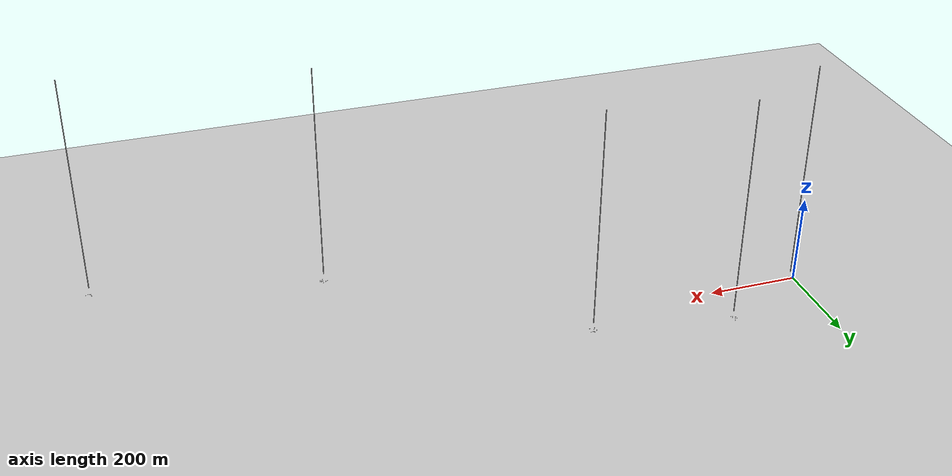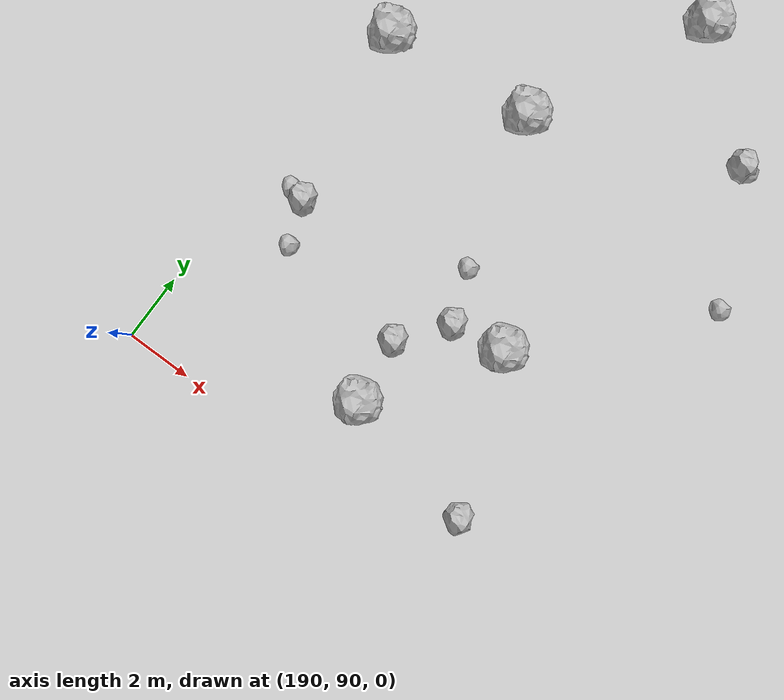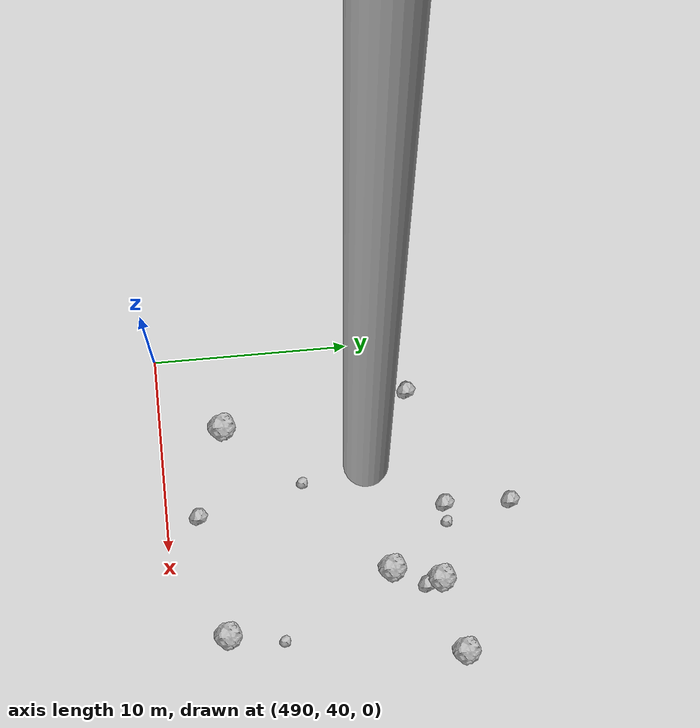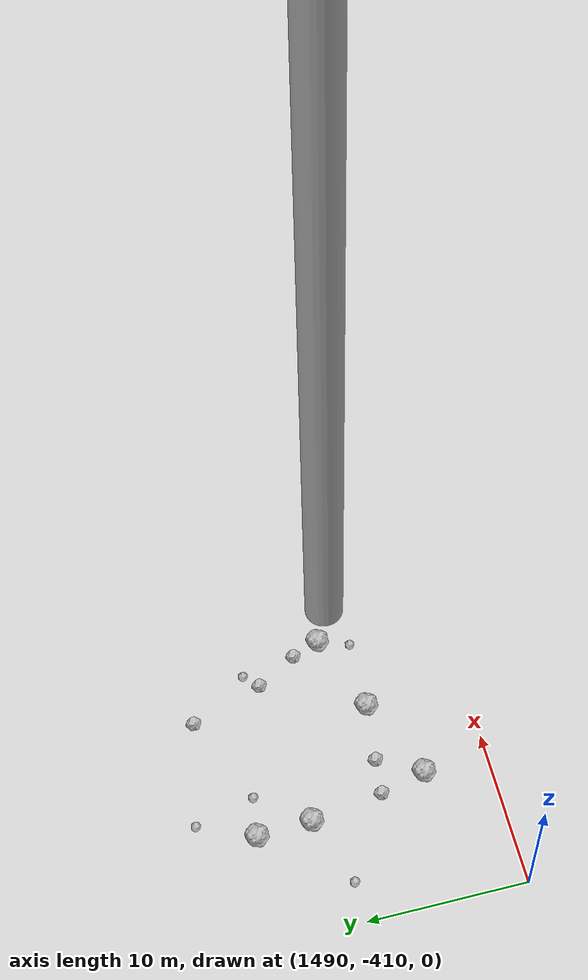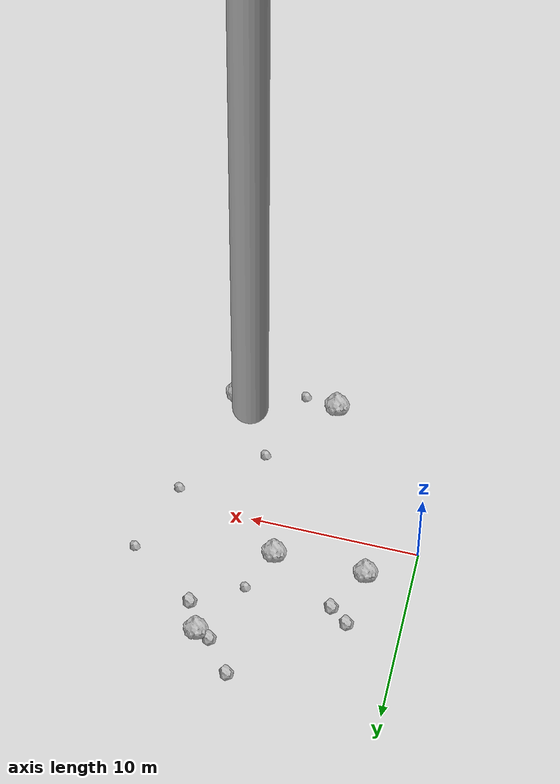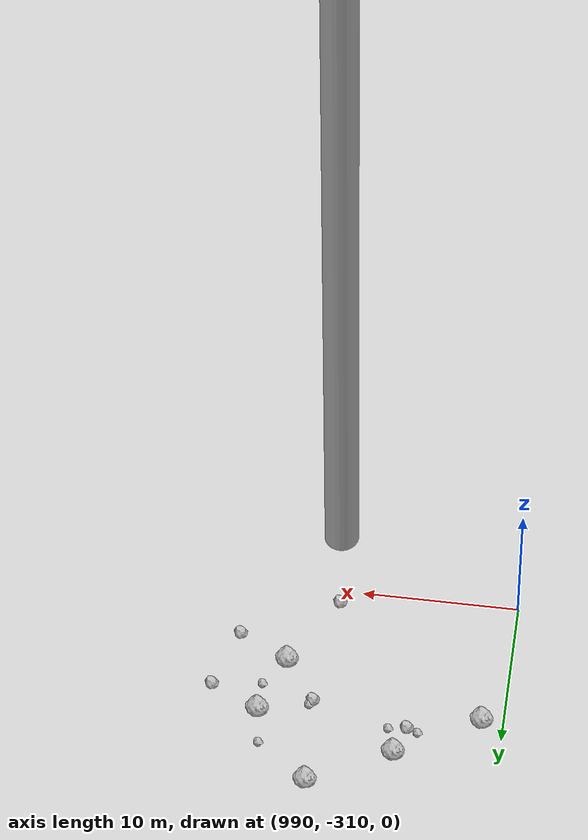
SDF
<?xml version="1.0" ?>
<sdf version="1.6">
  <world name="default">

    <include>
      <uri>model://custom_ground</uri>
    </include>

    <include>
      <uri>model://sun</uri>
    </include>

    <spherical_coordinates>
      <surface_model>EARTH_WGS84</surface_model>
      <latitude_deg>38.161479</latitude_deg>
      <longitude_deg>-122.454630</longitude_deg>
      <elevation>488.0</elevation>
      <heading_deg>90</heading_deg>
    </spherical_coordinates>

    <model name="rock1_0_0">
      <include>
        <uri>model://rock1</uri>
        <pose>12.48486217606649 -7.370115203001369 0.5 0 0 0</pose>
      </include>
    </model>
    <model name="rock1_0_1">
      <include>
        <uri>model://rock1</uri>
        <pose>8.22928700598597 1.7878159874069954 0.5 0 0 0</pose>
      </include>
    </model>
    <model name="rock1_0_2">
      <include>
        <uri>model://rock1</uri>
        <pose>6.621920321262198 -7.863817875949901 0.5 0 0 0</pose>
      </include>
    </model>
    <model name="rock1_0_3">
      <include>
        <uri>model://rock1</uri>
        <pose>11.621024056336273 7.366112214151887 0.5 0 0 0</pose>
      </include>
    </model>
    <model name="rock1_0_4">
      <include>
        <uri>model://rock1</uri>
        <pose>2.7577525527663416 1.8000235422113455 0.5 0 0 0</pose>
      </include>
    </model>
    <model name="rock2_0_0">
      <include>
        <uri>model://rock2</uri>
        <pose>10.754070909274638 7.69824977454768 0.3 0 0 0</pose>
      </include>
    </model>
    <model name="rock2_0_1">
      <include>
        <uri>model://rock2</uri>
        <pose>9.294680041619575 9.533649721858293 0.3 0 0 0</pose>
      </include>
    </model>
    <model name="rock2_0_2">
      <include>
        <uri>model://rock2</uri>
        <pose>3.1700888413545414 5.0388247984174335 0.3 0 0 0</pose>
      </include>
    </model>
    <model name="rock2_0_3">
      <include>
        <uri>model://rock2</uri>
        <pose>4.249672472189836 4.265751561853744 0.3 0 0 0</pose>
      </include>
    </model>
    <model name="rock2_0_4">
      <include>
        <uri>model://rock2</uri>
        <pose>12.36024825588262 5.7452307483080745 0.3 0 0 0</pose>
      </include>
    </model>
    <model name="rock3_0_0">
      <include>
        <uri>model://rock3</uri>
        <pose>16.227136961596372 3.137654704854686 0.2 0 0 0</pose>
      </include>
    </model>
    <model name="rock3_0_1">
      <include>
        <uri>model://rock3</uri>
        <pose>9.37619074326996 4.158216679993519 0.2 0 0 0</pose>
      </include>
    </model>
    <model name="rock3_0_2">
      <include>
        <uri>model://rock3</uri>
        <pose>8.483020476869111 -8.0819959175825 0.2 0 0 0</pose>
      </include>
    </model>
    <model name="rock3_0_3">
      <include>
        <uri>model://rock3</uri>
        <pose>10.016227197043357 -4.013724607796336 0.2 0 0 0</pose>
      </include>
    </model>
    <model name="rock3_0_4">
      <include>
        <uri>model://rock3</uri>
        <pose>14.51001283884823 -0.9393892897101033 0.2 0 0 0</pose>
      </include>
    </model>
    <model name="rock1_1_0">
      <include>
        <uri>model://rock1</uri>
        <pose>195.35818870858 101.93323382203081 0.5 0 0 0</pose>
      </include>
    </model>
    <model name="rock1_1_1">
      <include>
        <uri>model://rock1</uri>
        <pose>190.801239019235 101.51295934644703 0.5 0 0 0</pose>
      </include>
    </model>
    <model name="rock1_1_2">
      <include>
        <uri>model://rock1</uri>
        <pose>197.99167267501835 107.25560889976465 0.5 0 0 0</pose>
      </include>
    </model>
    <model name="rock1_1_3">
      <include>
        <uri>model://rock1</uri>
        <pose>198.83721598685977 96.0649816977038 0.5 0 0 0</pose>
      </include>
    </model>
    <model name="rock1_1_4">
      <include>
        <uri>model://rock1</uri>
        <pose>196.40033515200983 92.42460629634081 0.5 0 0 0</pose>
      </include>
    </model>
    <model name="rock2_1_0">
      <include>
        <uri>model://rock2</uri>
        <pose>201.2348228946114 104.47795149065374 0.3 0 0 0</pose>
      </include>
    </model>
    <model name="rock2_1_1">
      <include>
        <uri>model://rock2</uri>
        <pose>197.21973526186886 95.80054219838125 0.3 0 0 0</pose>
      </include>
    </model>
    <model name="rock2_1_2">
      <include>
        <uri>model://rock2</uri>
        <pose>191.60668118554014 96.11223790567229 0.3 0 0 0</pose>
      </include>
    </model>
    <model name="rock2_1_3">
      <include>
        <uri>model://rock2</uri>
        <pose>196.13745978594926 94.40237897236483 0.3 0 0 0</pose>
      </include>
    </model>
    <model name="rock2_1_4">
      <include>
        <uri>model://rock2</uri>
        <pose>200.6426036240114 91.47849716869291 0.3 0 0 0</pose>
      </include>
    </model>
    <model name="rock3_1_0">
      <include>
        <uri>model://rock3</uri>
        <pose>191.11171845154615 96.16592741089762 0.2 0 0 0</pose>
      </include>
    </model>
    <model name="rock3_1_1">
      <include>
        <uri>model://rock3</uri>
        <pose>196.62516541354174 97.31881516336912 0.2 0 0 0</pose>
      </include>
    </model>
    <model name="rock3_1_2">
      <include>
        <uri>model://rock3</uri>
        <pose>201.45373704262795 104.3864484678616 0.2 0 0 0</pose>
      </include>
    </model>
    <model name="rock3_1_3">
      <include>
        <uri>model://rock3</uri>
        <pose>203.13246782946342 100.66430220534762 0.2 0 0 0</pose>
      </include>
    </model>
    <model name="rock3_1_4">
      <include>
        <uri>model://rock3</uri>
        <pose>192.06967325191079 94.76242505306978 0.2 0 0 0</pose>
      </include>
    </model>
    <model name="rock1_2_0">
      <include>
        <uri>model://rock1</uri>
        <pose>501.9400743205046 51.367829649642154 0.5 0 0 0</pose>
      </include>
    </model>
    <model name="rock1_2_1">
      <include>
        <uri>model://rock1</uri>
        <pose>504.68563478122843 42.698252832512786 0.5 0 0 0</pose>
      </include>
    </model>
    <model name="rock1_2_2">
      <include>
        <uri>model://rock1</uri>
        <pose>506.50843583885285 54.746441408890746 0.5 0 0 0</pose>
      </include>
    </model>
    <model name="rock1_2_3">
      <include>
        <uri>model://rock1</uri>
        <pose>502.6710267804668 53.84366559954122 0.5 0 0 0</pose>
      </include>
    </model>
    <model name="rock1_2_4">
      <include>
        <uri>model://rock1</uri>
        <pose>493.8410186602928 43.226442259617286 0.5 0 0 0</pose>
      </include>
    </model>
    <model name="rock2_2_0">
      <include>
        <uri>model://rock2</uri>
        <pose>498.34983912403686 41.66727257465642 0.3 0 0 0</pose>
      </include>
    </model>
    <model name="rock2_2_1">
      <include>
        <uri>model://rock2</uri>
        <pose>498.8702153227211 57.74597844297718 0.3 0 0 0</pose>
      </include>
    </model>
    <model name="rock2_2_2">
      <include>
        <uri>model://rock2</uri>
        <pose>498.7405794747633 54.38014212128821 0.3 0 0 0</pose>
      </include>
    </model>
    <model name="rock2_2_3">
      <include>
        <uri>model://rock2</uri>
        <pose>492.66628503606654 52.93278539051765 0.3 0 0 0</pose>
      </include>
    </model>
    <model name="rock2_2_4">
      <include>
        <uri>model://rock2</uri>
        <pose>502.87062326968385 53.095689166791026 0.3 0 0 0</pose>
      </include>
    </model>
    <model name="rock3_2_0">
      <include>
        <uri>model://rock3</uri>
        <pose>505.1571511637568 45.55507049007526 0.2 0 0 0</pose>
      </include>
    </model>
    <model name="rock3_2_1">
      <include>
        <uri>model://rock3</uri>
        <pose>499.7001409827858 54.36931028998703 0.2 0 0 0</pose>
      </include>
    </model>
    <model name="rock3_2_2">
      <include>
        <uri>model://rock3</uri>
        <pose>492.4604554715499 52.863547928748616 0.2 0 0 0</pose>
      </include>
    </model>
    <model name="rock3_2_3">
      <include>
        <uri>model://rock3</uri>
        <pose>492.009726234429 50.37876207590732 0.2 0 0 0</pose>
      </include>
    </model>
    <model name="rock3_2_4">
      <include>
        <uri>model://rock3</uri>
        <pose>497.0468375394596 47.1063871787959 0.2 0 0 0</pose>
      </include>
    </model>
    <model name="rock1_3_0">
      <include>
        <uri>model://rock1</uri>
        <pose>1005.4793674012392 -300.2261072576464 0.5 0 0 0</pose>
      </include>
    </model>
    <model name="rock1_3_1">
      <include>
        <uri>model://rock1</uri>
        <pose>991.3993161549652 -301.18770802242994 0.5 0 0 0</pose>
      </include>
    </model>
    <model name="rock1_3_2">
      <include>
        <uri>model://rock1</uri>
        <pose>996.6200207934731 -298.12341554015916 0.5 0 0 0</pose>
      </include>
    </model>
    <model name="rock1_3_3">
      <include>
        <uri>model://rock1</uri>
        <pose>1004.1324518222234 -304.1584295133246 0.5 0 0 0</pose>
      </include>
    </model>
    <model name="rock1_3_4">
      <include>
        <uri>model://rock1</uri>
        <pose>1001.7881311188685 -295.381062294636 0.5 0 0 0</pose>
      </include>
    </model>
    <model name="rock2_3_0">
      <include>
        <uri>model://rock2</uri>
        <pose>1001.3753269690933 -309.0059059762102 0.3 0 0 0</pose>
      </include>
    </model>
    <model name="rock2_3_1">
      <include>
        <uri>model://rock2</uri>
        <pose>1008.5947532861392 -301.7882980207988 0.3 0 0 0</pose>
      </include>
    </model>
    <model name="rock2_3_2">
      <include>
        <uri>model://rock2</uri>
        <pose>1007.3312936894309 -305.8295324296129 0.3 0 0 0</pose>
      </include>
    </model>
    <model name="rock2_3_3">
      <include>
        <uri>model://rock2</uri>
        <pose>995.9732183836934 -300.0431077757986 0.3 0 0 0</pose>
      </include>
    </model>
    <model name="rock2_3_4">
      <include>
        <uri>model://rock2</uri>
        <pose>1002.0977828633553 -301.35558582781573 0.3 0 0 0</pose>
      </include>
    </model>
    <model name="rock3_3_0">
      <include>
        <uri>model://rock3</uri>
        <pose>1005.0375754811779 -297.85327450880516 0.2 0 0 0</pose>
      </include>
    </model>
    <model name="rock3_3_1">
      <include>
        <uri>model://rock3</uri>
        <pose>1002.2583907542921 -301.04524508328456 0.2 0 0 0</pose>
      </include>
    </model>
    <model name="rock3_3_2">
      <include>
        <uri>model://rock3</uri>
        <pose>1005.3880892757422 -302.23906418257593 0.2 0 0 0</pose>
      </include>
    </model>
    <model name="rock3_3_3">
      <include>
        <uri>model://rock3</uri>
        <pose>997.1077430935673 -299.91150705018094 0.2 0 0 0</pose>
      </include>
    </model>
    <model name="rock3_3_4">
      <include>
        <uri>model://rock3</uri>
        <pose>995.2429281044483 -299.81789171430086 0.2 0 0 0</pose>
      </include>
    </model>
    <model name="rock1_4_0">
      <include>
        <uri>model://rock1</uri>
        <pose>1498.4626432381856 -405.8517850769896 0.5 0 0 0</pose>
      </include>
    </model>
    <model name="rock1_4_1">
      <include>
        <uri>model://rock1</uri>
        <pose>1503.7794887539915 -403.58640551110614 0.5 0 0 0</pose>
      </include>
    </model>
    <model name="rock1_4_2">
      <include>
        <uri>model://rock1</uri>
        <pose>1496.8357577315178 -394.9053491393768 0.5 0 0 0</pose>
      </include>
    </model>
    <model name="rock1_4_3">
      <include>
        <uri>model://rock1</uri>
        <pose>1496.9989844613667 -398.3625596950851 0.5 0 0 0</pose>
      </include>
    </model>
    <model name="rock1_4_4">
      <include>
        <uri>model://rock1</uri>
        <pose>1509.0019353671732 -401.7151026621925 0.5 0 0 0</pose>
      </include>
    </model>
    <model name="rock2_4_0">
      <include>
        <uri>model://rock2</uri>
        <pose>1505.1913229411693 -392.7659284720894 0.3 0 0 0</pose>
      </include>
    </model>
    <model name="rock2_4_1">
      <include>
        <uri>model://rock2</uri>
        <pose>1508.315174992046 -399.9523426491743 0.3 0 0 0</pose>
      </include>
    </model>
    <model name="rock2_4_2">
      <include>
        <uri>model://rock2</uri>
        <pose>1497.712161460489 -402.9559804324966 0.3 0 0 0</pose>
      </include>
    </model>
    <model name="rock2_4_3">
      <include>
        <uri>model://rock2</uri>
        <pose>1506.788815035301 -397.3642797472773 0.3 0 0 0</pose>
      </include>
    </model>
    <model name="rock2_4_4">
      <include>
        <uri>model://rock2</uri>
        <pose>1499.9827386152613 -403.1716433036339 0.3 0 0 0</pose>
      </include>
    </model>
    <model name="rock3_4_0">
      <include>
        <uri>model://rock3</uri>
        <pose>1492.5345578301042 -399.9315739918233 0.2 0 0 0</pose>
      </include>
    </model>
    <model name="rock3_4_1">
      <include>
        <uri>model://rock3</uri>
        <pose>1507.709396990496 -396.5337763376241 0.2 0 0 0</pose>
      </include>
    </model>
    <model name="rock3_4_2">
      <include>
        <uri>model://rock3</uri>
        <pose>1498.363765544942 -391.47665622730096 0.2 0 0 0</pose>
      </include>
    </model>
    <model name="rock3_4_3">
      <include>
        <uri>model://rock3</uri>
        <pose>1499.3745492029188 -395.27875450311694 0.2 0 0 0</pose>
      </include>
    </model>
    <model name="rock3_4_4">
      <include>
        <uri>model://rock3</uri>
        <pose>1508.2789130324502 -403.71468476443596 0.2 0 0 0</pose>
      </include>
    </model>

    <model name="cylinder_1">
      <static>true</static>
      <link name="link">
        <visual name="visual">
          <geometry>
            <cylinder>
              <radius>1</radius>
              <length>500</length>
            </cylinder>
          </geometry>
        </visual>
      </link>
      <pose>10 0 270 0 0 0</pose>
    </model>

    <model name="cylinder_2">
      <static>true</static>
      <link name="link">
        <visual name="visual">
          <geometry>
            <cylinder>
              <radius>1</radius>
              <length>500</length>
            </cylinder>
          </geometry>
        </visual>
      </link>
      <pose>200 100 270 0 0 0</pose>
    </model>

    <model name="cylinder_3">
      <static>true</static>
      <link name="link">
        <visual name="visual">
          <geometry>
            <cylinder>
              <radius>1</radius>
              <length>500</length>
            </cylinder>
          </geometry>
        </visual>
      </link>
      <pose>500 50 270 0 0 0</pose>
    </model>

    <model name="cylinder_4">
      <static>true</static>
      <link name="link">
        <visual name="visual">
          <geometry>
            <cylinder>
              <radius>1</radius>
              <length>500</length>
            </cylinder>
          </geometry>
        </visual>
      </link>
      <pose>1000 -300 270 0 0 0</pose>
    </model>

    <model name="cylinder_5">
      <static>true</static>
      <link name="link">
        <visual name="visual">
          <geometry>
            <cylinder>
              <radius>1</radius>
              <length>500</length>
            </cylinder>
          </geometry>
        </visual>
      </link>
      <pose>1500 -400 270 0 0 0</pose>
    </model>

  </world>
</sdf>

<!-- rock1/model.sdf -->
<sdf version="1.6">
  <model name="rock1">
    <static>true</static> <!-- Set to true if the model should not move -->
    <pose>0 0 0 0 0 0</pose>

    <!--z offset is 0.5 for full scale-->

    <link name="link">
      <collision name="rock1_collision">
        <geometry>
          <mesh>
            <uri>model://meshes/rock1.dae</uri>
          </mesh>
        </geometry>
      </collision>
      <visual name="rock1_visual">
        <geometry>
          <mesh>
            <uri>model://meshes/rock1.dae</uri>
          </mesh>
        </geometry>
        <material>
          <script>
            <uri>model://materials/scripts/sand_pebbles.material</uri>
            <name>custom_ground/Image</name>
          </script>
        </material>
      </visual>
    </link>
  </model>
</sdf>

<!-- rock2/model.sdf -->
<sdf version="1.6">
  <model name="rock2">
    <static>true</static> <!-- Set to true if the model should not move -->
    <pose>0 0 0 0 0 0</pose>

    <!--z offset is 0.3 for full scale-->

    <link name="link">
      <collision name="rock2_collision">
        <geometry>
          <mesh>
            <uri>model://meshes/rock2.dae</uri>
          </mesh>
        </geometry>
      </collision>
      <visual name="rock2_visual">
        <geometry>
          <mesh>
            <uri>model://meshes/rock2.dae</uri>
          </mesh>
        </geometry>
        <material>
          <script>
            <uri>model://materials/scripts/sand_pebbles.material</uri>
            <name>custom_ground/Image</name>
          </script>
        </material>
      </visual>
    </link>
  </model>
</sdf>

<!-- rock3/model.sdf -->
<sdf version="1.6">
  <model name="rock3">
    <static>true</static> <!-- Set to true if the model should not move -->
    <pose>0 0 0 0 0 0</pose>

    <!--z offset is 0.2 for full scale-->

    <link name="link">
      <collision name="rock3_collision">
        <geometry>
          <mesh>
            <uri>model://meshes/rock3.dae</uri>
          </mesh>
        </geometry>
      </collision>
      <visual name="rock3_visual">
        <geometry>
          <mesh>
            <uri>model://meshes/rock3.dae</uri>
          </mesh>
        </geometry>
        <material>
          <script>
            <uri>model://materials/scripts/sand_pebbles.material</uri>
            <name>custom_ground/Image</name>
          </script>
        </material>
      </visual>
    </link>
  </model>
</sdf>

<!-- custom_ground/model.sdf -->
<sdf version="1.6">
  <model name="custom_ground">
    <static>true</static> <!-- Ground is static and immovable -->
    <link name="ground_link">
      <pose>240 0 0 0 0 0</pose> <!-- Position and orientation relative to the world -->
      <!-- Visual Representation -->
      <visual name="ground_visual">
        <geometry>
          <plane>
            <normal>0 0 1</normal> <!-- Upward facing plane -->
            <size>500 500</size> <!-- Size of the plane -->
          </plane>
        </geometry>
        <material>
          <script>
            <uri>model://materials/scripts/sand_pebbles.material</uri>
            <name>custom_ground/Image</name>
          </script>
        </material>
      </visual>

      <!-- Collision Representation -->
      <collision name="ground_collision">
        <geometry>
          <plane>
            <normal>0 0 1</normal>
            <size>100 100</size>
          </plane>
        </geometry>
      </collision>

    </link>
  </model>
</sdf>
